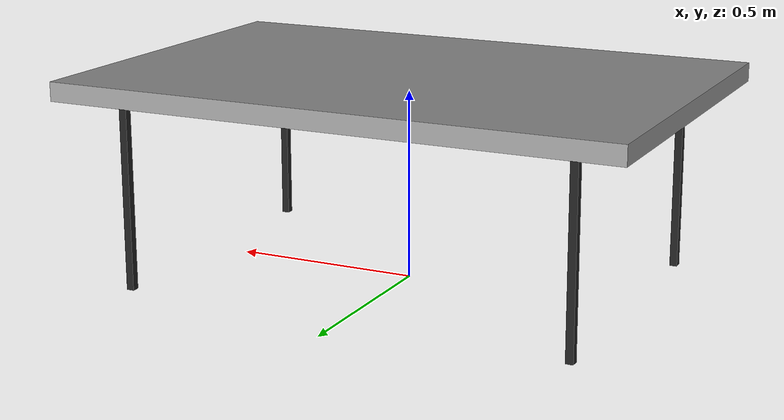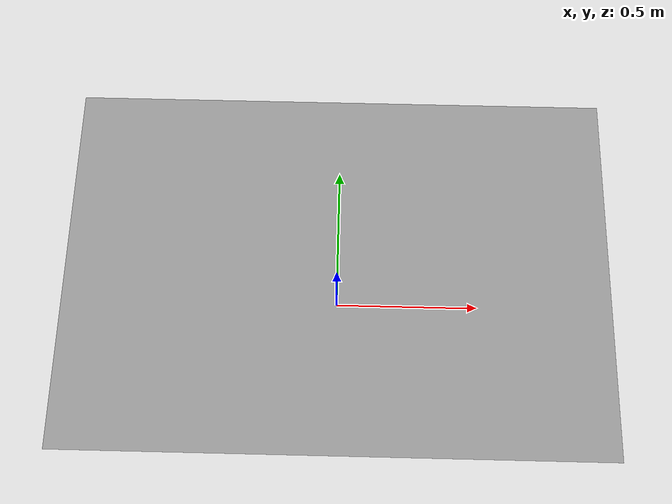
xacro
<?xml version="1.0"?>
<robot name = "table">

<link name="world"/>

<joint name = "table_joint" type = "fixed">
  <parent link="world"/>
  <child link = "table"/>
</joint>

<link name ="table">
  <collision>
    <origin xyz="0 0 0.525" rpy="0 0 0"/>
    <geometry>
      <box size="1.5 1 0.05"/>
    </geometry>
  </collision>

  <visual>
    <origin xyz="0 0 0.525" rpy="0 0 0"/>
    <geometry>
      <box size="1.5 1 0.05"/>
    </geometry>
  </visual>

  <inertial>
    <origin xyz="0 0 0.525" rpy="0 0 0" />
    <mass value="0.075" />
    <inertia
      ixx="0.001" ixy="0.0"  ixz="0.0"
      iyy="0.001" iyz="0.0"
      izz="0.001" />
  </inertial>
</link>

<joint name="leg1_joint" type = "fixed">
	<parent link="table"/>
	<child link="leg1"/>
</joint>

<link name ="leg1">
  <collision>
    <origin xyz="0.6 0.4 0.25" rpy="0 0 0"/>
    <geometry>
      <box size="0.04 0.04 0.5"/>
    </geometry>
  </collision>

  <visual>
    <origin xyz="0.6 0.4 0.25" rpy="0 0 0"/>
    <geometry>
      <box size="0.02 0.02 0.5"/>
    </geometry>
  </visual>

  <inertial>
    <origin xyz="0.6 0.4 0.25" rpy="0 0 0" />
    <mass value="0.012" />
    <inertia
      ixx="0.001" ixy="0.0"  ixz="0.0"
      iyy="0.001" iyz="0.0"
      izz="0.001" />
  </inertial>
</link>

<joint name="leg2_joint" type = "fixed">
	<parent link="table"/>
	<child link="leg2"/>
</joint>

<link name ="leg2">
  <collision>
    <origin xyz="-0.6 0.4 0.25" rpy="0 0 0"/>
    <geometry>
      <box size="0.02 0.02 0.5"/>
    </geometry>
  </collision>

  <visual>
    <origin xyz="-0.6 0.4 0.25" rpy="0 0 0"/>
    <geometry>
      <box size="0.02 0.02 0.5"/>
    </geometry>
  </visual>

  <inertial>
    <origin xyz="-0.6 0.4 0.25" rpy="0 0 0" />
    <mass value="0.02" />
    <inertia
      ixx="0.001" ixy="0.0"  ixz="0.0"
      iyy="0.001" iyz="0.0"
      izz="0.001" />
  </inertial>
</link>

<joint name="leg3_joint" type = "fixed">
	<parent link="table"/>
	<child link="leg3"/>
</joint>

<link name ="leg3">
  <collision>
    <origin xyz="-0.6 -0.4 0.25" rpy="0 0 0"/>
    <geometry>
      <box size="0.02 0.02 0.5"/>
    </geometry>
  </collision>

  <visual>
    <origin xyz="-0.6 -0.4 0.25" rpy="0 0 0"/>
    <geometry>
      <box size="0.02 0.02 0.5"/>
    </geometry>
  </visual>

  <inertial>
    <origin xyz="-0.6 -0.4 0.25" rpy="0 0 0" />
    <mass value="0.02" />
    <inertia
      ixx="0.001" ixy="0.0"  ixz="0.0"
      iyy="0.001" iyz="0.0"
      izz="0.001" />
  </inertial>
</link>

<joint name="leg4_joint" type = "fixed">
	<parent link="table"/>
	<child link="leg4"/>
</joint>

<link name ="leg4">
  <collision>
    <origin xyz="0.6 -0.4 0.25" rpy="0 0 0"/>
    <geometry>
      <box size="0.02 0.02 0.5"/>
    </geometry>
  </collision>

  <visual>
    <origin xyz="0.6 -0.4 0.25" rpy="0 0 0"/>
    <geometry>
      <box size="0.02 0.02 0.5"/>
    </geometry>
  </visual>

  <inertial>
    <origin xyz="0.6 -0.4 0.25" rpy="0 0 0" />
    <mass value="0.02" />
    <inertia
      ixx="0.001" ixy="0.0"  ixz="0.0"
      iyy="0.001" iyz="0.0"
      izz="0.001" />
  </inertial>
</link>

<gazebo reference="table">
  <mu1>10</mu1>
  <mu2>10</mu2>
  <material>Gazebo/grey</material>
</gazebo>

<gazebo reference="leg1">
  <mu1>10</mu1>
  <mu2>10</mu2>
  <material>Gazebo/Black</material>
</gazebo>

<gazebo reference="leg2">
  <mu1>10</mu1>
  <mu2>10</mu2>
  <material>Gazebo/Black</material>
</gazebo>

<gazebo reference="leg3">
  <mu1>10</mu1>
  <mu2>10</mu2>
  <material>Gazebo/Black</material>
</gazebo>

<gazebo reference="leg4">
  <mu1>10</mu1>
  <mu2>10</mu2>
  <material>Gazebo/Black</material>
</gazebo>

</robot>
